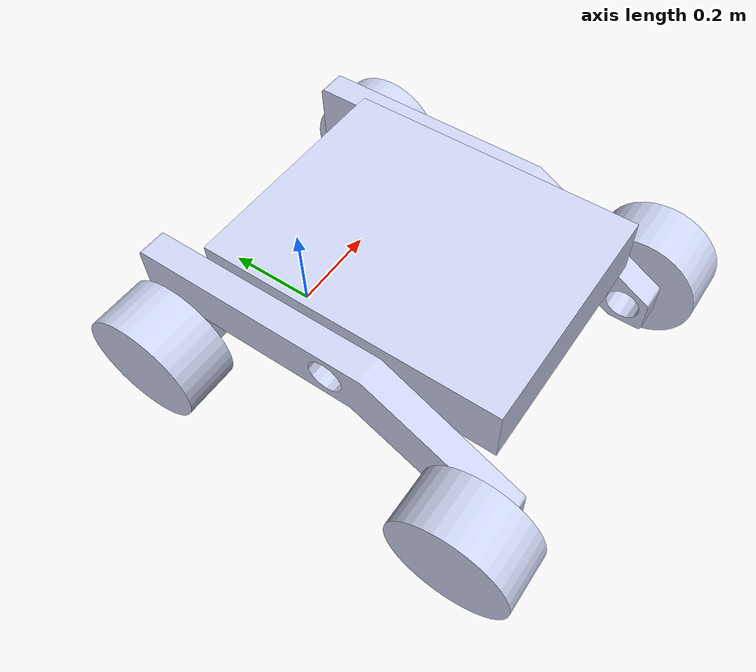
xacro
<?xml version="1.0"?>

<robot xmlns:xacro="http://www.ros.org/wiki/xacro" name="rover">

    <xacro:include filename="rover_core.xacro" />
    <xacro:include filename="gazebo_control.xacro" />

</robot>

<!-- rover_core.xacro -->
<robot xmlns:xacro="http://www.ros.org/wiki/xacro">

    <material name="forest_green">
        <color rgba="0.13 0.55 0.13 1"/>
    </material>

    <material name="grey">
        <color rgba="0.5 0.5 0.5 1"/>
    </material>

    <material name="black">
        <color rgba="0 0 0 1"/>
    </material>

    <link name="base_link">
        <inertial>
            <origin xyz="0.112849924193879 -0.232793382157193 0.183076177862911" rpy="0 0 0" />
            <mass value="45.6227535447207" />
            <inertia ixx="1.84588066123249" ixy="1.04398822934646E-09" ixz="-2.19695722124988E-08" iyy="1.12675188376899" iyz="-5.73876173682645E-05" izz="2.83493149680154" />
        </inertial>
        <visual>
            <origin xyz="0 0 0" rpy="0 0 0" />
            <geometry>
                <mesh filename="package://rover_sim/meshes/base_link.STL"/>
            </geometry>
            <material name="">
                <color rgba="0.792156862745098 0.819607843137255 0.933333333333333 1" />
            </material>
        </visual>
        <collision>
            <origin xyz="0 0 0" rpy="0 0 0" />
            <geometry>
                <mesh filename="package://rover_sim/meshes/base_link.STL"/>
            </geometry>
        </collision>
    </link>

    <gazebo reference="base_link">
        <material>Gazebo/forest_green</material>
    </gazebo>

    <link name="ROCKER_L">
        <inertial>
            <origin xyz="0.0576803895536336 0.0340847304368007 0.031349999159246" rpy="0 0 0" />
            <mass value="6.7188177795508" />
            <inertia ixx="0.0336800630880808" ixy="-0.0365712848373038" ixz="1.472561846937E-09" iyy="0.459728619591422" iyz="7.0337085870288E-10" izz="0.489006412488076" />
        </inertial>
        <visual>
            <origin xyz="0 0 0" rpy="0 0 0" />
            <geometry>
                <mesh filename="package://rover_sim/meshes/ROCKER_L.STL" />
            </geometry>
            <material name="">
                <color rgba="0.792156862745098 0.819607843137255 0.933333333333333 1" />
            </material>
        </visual>
        <collision>
            <origin xyz="0 0 0" rpy="0 0 0" />
            <geometry>
                <mesh filename="package://rover_sim/meshes/ROCKER_L.STL" />
            </geometry>
        </collision>
    </link>

    <gazebo reference="ROCKER_L">
        <material>Gazebo/grey</material>
    </gazebo>

    <link name="ROCKER_R">
        <inertial>
            <origin xyz="0.0576803900595149 0.0340847288843424 0.0313499999163654" rpy="0 0 0" />
            <mass value="6.71881777955079" />
            <inertia ixx="0.0336800620025095" ixy="-0.0365712785139467" ixz="6.60208857696379E-10" iyy="0.459728620676994" iyz="5.30271193571037E-11" izz="0.489006412488076" />
        </inertial>
        <visual>
            <origin xyz="0 0 0" rpy="0 0 0" />
            <geometry>
                <mesh filename="package://rover_sim/meshes/ROCKER_R.STL" />
            </geometry>
            <material name="">
                <color rgba="0.792156862745098 0.819607843137255 0.933333333333333 1" />
            </material>
        </visual>
        <collision>
            <origin xyz="0 0 0" rpy="0 0 0" />
            <geometry>
                <mesh filename="package://rover_sim/meshes/ROCKER_R.STL" />
            </geometry>
        </collision>
    </link>

    <gazebo reference="ROCKER_R">
        <material>Gazebo/grey</material>
    </gazebo>

    <link name="WHEEL_FL">
        <inertial>
            <origin xyz="9.42478317611517E-11 2.81360871927372E-09 -0.0649999999999999" rpy="0 0 0" />
            <mass value="7.55389670370359" />
            <inertia ixx="0.045567622882308" ixy="1.52458161818203E-18" ixz="-3.52208858329878E-11" iyy="0.045567622882308" iyz="-1.05145916727233E-09" izz="0.0698584367158508" />
        </inertial>
        <visual>
            <origin xyz="0 0 0" rpy="0 0 0" />
            <geometry>
                <mesh filename="package://rover_sim/meshes/WHEEL_FL.STL" />
            </geometry>
            <material name="">
                <color rgba="0.792156862745098 0.819607843137255 0.933333333333333 1" />
            </material>
        </visual>
        <collision>
            <origin xyz="0 0 0" rpy="0 0 0" />
            <geometry>
                <mesh filename="package://rover_sim/meshes/WHEEL_FL.STL" />
            </geometry>
        </collision>
    </link>

    <gazebo reference="WHEEL_FL">
        <material>Gazebo/black</material>
    </gazebo>

    <link name="WHEEL_RL">
        <inertial>
            <origin xyz="9.42478872723029E-11 2.8136087197074E-09 -0.0650000000000001" rpy="0 0 0" />
            <mass value="7.55389670370359" />
            <inertia ixx="0.045567622882308" ixy="1.52458158197648E-18" ixz="-3.52208867726297E-11" iyy="0.045567622882308" iyz="-1.05145916727233E-09" izz="0.0698584367158508" />
        </inertial>
        <visual>
            <origin xyz="0 0 0" rpy="0 0 0" />
            <geometry>
                <mesh filename="package://rover_sim/meshes/WHEEL_RL.STL" />
            </geometry>
            <material name="">
                <color rgba="0.792156862745098 0.819607843137255 0.933333333333333 1" />
            </material>
        </visual>
        <collision>
            <origin xyz="0 0 0" rpy="0 0 0" />
            <geometry>
                <mesh filename="package://rover_sim/meshes/WHEEL_RL.STL" />
            </geometry>
        </collision>
    </link>

    <gazebo reference="WHEEL_RL">
        <material>Gazebo/black</material>
    </gazebo>

    <link name="WHEEL_FR">
        <inertial>
            <origin xyz="9.42478317611517E-11 2.81360889231239E-09 -0.0649999999999999" rpy="0 0 0" />
            <mass value="7.55389670370359" />
            <inertia ixx="0.045567622882308" ixy="1.52458164381907E-18" ixz="-3.52208928881465E-11" iyy="0.045567622882308" iyz="-1.05145923201004E-09" izz="0.0698584367158508" />
        </inertial>
        <visual>
            <origin xyz="0 0 0" rpy="0 0 0" />
            <geometry>
                <mesh filename="package://rover_sim/meshes/WHEEL_FR.STL" />
            </geometry>
            <material name="">
                <color rgba="0.792156862745098 0.819607843137255 0.933333333333333 1" />
            </material>
        </visual>
        <collision>
            <origin xyz="0 0 0" rpy="0 0 0" />
            <geometry>
                <mesh filename="package://rover_sim/meshes/WHEEL_FR.STL" />
            </geometry>
        </collision>
    </link>]

    <gazebo reference="WHEEL_FR">
        <material>Gazebo/black</material>
    </gazebo>

    <link name="WHEEL_RR">
        <inertial>
            <origin xyz="9.42479150278785E-11 2.8136088918787E-09 -0.0649999999999999" rpy="0 0 0" />
            <mass value="7.55389670370359" />
            <inertia ixx="0.045567622882308" ixy="1.52458164726758E-18" ixz="-3.52208937162165E-11" iyy="0.045567622882308" iyz="-1.05145923201005E-09" izz="0.0698584367158508" />
        </inertial>
        <visual>
            <origin xyz="0 0 0" rpy="0 0 0" />
            <geometry>
                <mesh filename="package://rover_sim/meshes/WHEEL_RR.STL" />
            </geometry>
            <material name="">
                <color rgba="0.792156862745098 0.819607843137255 0.933333333333333 1" />
            </material>
        </visual>
        <collision>
            <origin xyz="0 0 0" rpy="0 0 0" />
            <geometry>
                <mesh filename="package://rover_sim/meshes/WHEEL_RR.STL" />
            </geometry>
        </collision>
    </link>

    <gazebo reference="WHEEL_RR">
        <material>Gazebo/black</material>
    </gazebo>

    <joint name="ROCKER_L_JOINT" type="revolute">
        <origin xyz="0.3766 -0.20681 0.078821" rpy="1.5708 0 1.5708" />
        <parent link="base_link" />
        <child link="ROCKER_L" />
        <axis xyz="0 0 1" />
        <limit lower="-0.35" upper="0.35" effort="0" velocity="0" />
    </joint>

    <joint name="ROCKER_R_JOINT" type="revolute">
        <origin xyz="-0.213600073527999 -0.206807226568189 0.0788212705195118" rpy="1.57079630458203 0 1.5707963267949" />
        <parent link="base_link" />
        <child link="ROCKER_R" />
        <axis xyz="0 0 1" />
        <limit lower="-0.35" upper="0.35" effort="0" velocity="0" />
    </joint>

    <joint name="WHEEL_FL_JOINT" type="revolute">
        <origin xyz="-0.37995 -0.082166 0.1927" rpy="0 0 3.1416" />
        <parent link="ROCKER_L" />
        <child link="WHEEL_FL" />
        <axis xyz="0 0 -1" />
        <limit lower="-9999" upper="9999" effort="0" velocity="20" />
    </joint>

    <joint name="WHEEL_RL_JOINT" type="revolute">
        <origin xyz="0.375460091610939 -0.0821661046351226 0.192700001280739" rpy="0 0 3.14159265358979" />
        <parent link="ROCKER_L" />
        <child link="WHEEL_RL" />
        <axis xyz="0 0 -0.999999999999999" />
        <limit lower="0" upper="0" effort="0" velocity="20" />
    </joint>

    <joint name="WHEEL_FR_JOINT" type="revolute">
        <origin xyz="-0.379949909887969 -0.0821661155180505 0" rpy="0 0 3.14159263874792" />
        <parent link="ROCKER_R" />
        <child link="WHEEL_FR" />
        <axis xyz="0 0 -0.999999999999999" />
        <limit lower="999" upper="100" effort="0" velocity="20" />
    </joint>

    <joint name="WHEEL_RR_JOINT" type="revolute">
        <origin xyz="0.375460090112031 -0.082166114488072 0" rpy="0 0 3.14159263874792" />
        <parent link="ROCKER_R" />
        <child link="WHEEL_RR" />
        <axis xyz="0 0 -0.999999999999999" />
        <limit lower="100" upper="100" effort="0" velocity="20" />
    </joint>

</robot>
